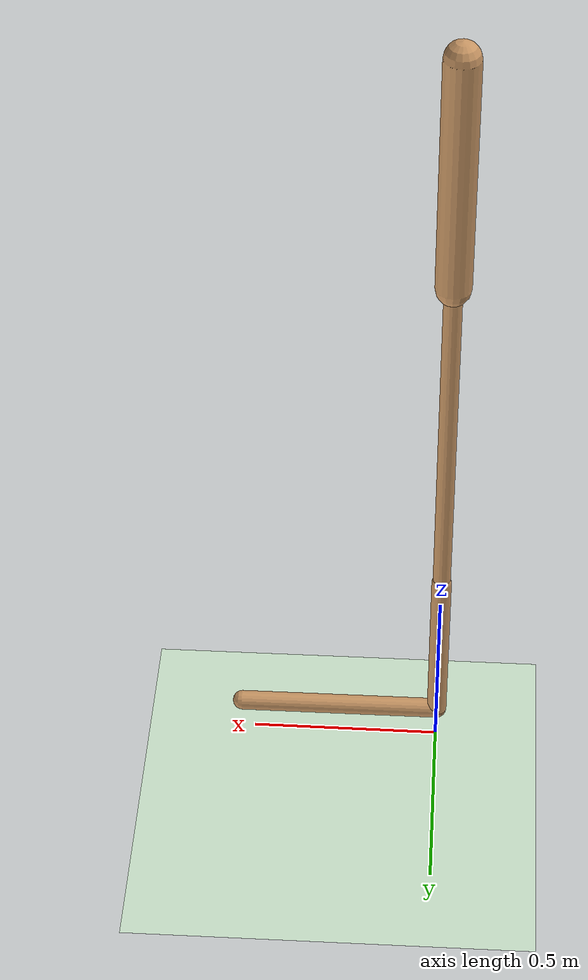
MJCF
<mujoco model="walker2d">
  <compiler angle="degree" inertiafromgeom="true" />
  <default>
    <joint armature="0.01" damping=".1" limited="true" />
    <geom conaffinity="0" condim="3" contype="1" density="1000" friction=".7 .1 .1" rgba="0.8 0.6 .4 1" />
  </default>
  <option integrator="RK4" timestep="0.002" />
  <worldbody>
    <light cutoff="100" diffuse="1 1 1" dir="-0 0 -1.3" directional="true" exponent="1" pos="0 0 1.3" specular=".1 .1 .1" />
    <geom conaffinity="1" condim="3" name="floor" pos="0 0 0" rgba="0.8 0.9 0.8 1" size="40 40 40" type="plane" material="MatPlane" />
    <body name="torso" pos="0 0 1.8701118588447572">
      <camera name="track" mode="trackcom" pos="0 -5 -1.25" xyaxes="1 0 0 0 0 1" />
      <joint armature="0" axis="1 0 0" damping="0" limited="false" name="rootx" pos="0 0 -1.25" stiffness="0" type="slide" />
      <joint armature="0" axis="0 0 1" damping="0" limited="false" name="rootz" pos="0 0 -1.25" ref="1.25" stiffness="0" type="slide" />
      <joint armature="0" axis="0 1 0" damping="0" limited="false" name="rooty" pos="0 0 0" stiffness="0" type="hinge" />
      <geom friction="0.9" name="torso_geom" size="0.044424355030059814 0.3151854872703552" type="capsule" />
      <body name="thigh" pos="0 0 -0.3151854872703552">
        <joint axis="0 -1 0" name="thigh_joint" pos="0 0 0" range="-150 0" type="hinge" />
        <site name="torso_thigh_site" pos="0 0 0" size="0.01" type="sphere" rgba="1 0 0 0.5" />
        <geom friction="0.9" pos="0 0 -0.4852128028869629" name="thigh_geom" size="0.023041408509016037 0.4852128028869629" type="capsule" />
        <body name="leg" pos="0 0 -1.2126759886741638">
          <joint axis="0 -1 0" name="leg_joint" pos="0 0 0.24225038290023804" range="-150 0" type="hinge" />
          <site name="thigh_leg_site" pos="0 0 0.25" size="0.01" type="sphere" rgba="1 0 0 0.5" />
          <geom friction="0.9" name="leg_geom" size="0.02602195553481579 0.24225038290023804" type="capsule" />
          <body name="foot" pos="0.5331371426582336 0 -0.342250382900238">
            <joint axis="0 -1 0" name="foot_joint" pos="-0.5331371426582336 0 0.1" range="-45 45" type="hinge" />
            <site name="leg_foot_site" pos="-0.2 0 0.1" size="0.01" type="sphere" rgba="1 0 0 0.5" />
            <geom friction="0.9" pos="-0.2665685713291168 0 0.1" quat="0.70710678118654757 0 -0.70710678118654746 0" name="foot_geom" size="0.026276875287294388 0.2665685713291168" type="capsule" />
          </body>
        </body>
      </body>

      <body name="thigh_left" pos="0 0 -0.3151854872703552">
        <joint axis="0 -1 0" name="thigh_left_joint" pos="0 0 0" range="-150 0" type="hinge" />
        <site name="torso_thigh_left_site" pos="0 0 0" size="0.01" type="sphere" rgba="1 0 0 0.5" />
        <geom friction="0.9" name="thigh_left_geom" rgba=".7 .3 .6 1" size="0.023041408509016037 0.4852128028869629" pos="0 0 -0.4852128028869629" type="capsule" />
        <body name="leg_left" pos="0 0 -1.2126759886741638">
          <joint axis="0 -1 0" name="leg_left_joint" pos="0 0 0.24225038290023804" range="-150 0" type="hinge" />
          <site name="thigh_leg_left_site" pos="0 0 0.25" size="0.01" type="sphere" rgba="1 0 0 0.5" />
          <geom friction="0.9" name="leg_left_geom" rgba=".7 .3 .6 1" size="0.02602195553481579 0.24225038290023804" type="capsule" />
          <body name="foot_left" pos="0.5331371426582336 0 -0.342250382900238">
            <joint axis="0 -1 0" name="foot_left_joint" pos="-0.5331371426582336 0 0.1" range="-45 45" type="hinge" />
            <site name="leg_foot_left_site" pos="-0.2 0 0.1" size="0.01" type="sphere" rgba="1 0 0 0.5" />
            <geom friction="1.9" name="foot_left_geom" rgba=".7 .3 .6 1" size="0.026276875287294388 0.2665685713291168" pos="-0.2665685713291168 0 0.1" type="capsule" quat="0.70710678118654757 0 -0.70710678118654746 0" />
          </body>
        </body>
      </body>
    </body>
  </worldbody>
  <actuator>

    <motor ctrllimited="true" ctrlrange="-1.0 1.0" gear="45.79602380190026" joint="thigh_joint" />
    <motor ctrllimited="true" ctrlrange="-1.0 1.0" gear="41.009487481374265" joint="leg_joint" />
    <motor ctrllimited="true" ctrlrange="-1.0 1.0" gear="51.12742064809813" joint="foot_joint" />
    <motor ctrllimited="true" ctrlrange="-1.0 1.0" gear="45.79602380190026" joint="thigh_left_joint" />
    <motor ctrllimited="true" ctrlrange="-1.0 1.0" gear="41.009487481374265" joint="leg_left_joint" />
    <motor ctrllimited="true" ctrlrange="-1.0 1.0" gear="51.12742064809813" joint="foot_left_joint" />

  </actuator>
    <asset>
        <texture type="skybox" builtin="gradient" rgb1=".4 .5 .6" rgb2="0 0 0" width="100" height="100" />
        <texture builtin="flat" height="1278" mark="cross" markrgb="1 1 1" name="texgeom" random="0.01" rgb1="0.8 0.6 0.4" rgb2="0.8 0.6 0.4" type="cube" width="127" />
        <texture builtin="checker" height="100" name="texplane" rgb1="0 0 0" rgb2="0.8 0.8 0.8" type="2d" width="100" />
        <material name="MatPlane" reflectance="0.5" shininess="1" specular="1" texrepeat="60 60" texture="texplane" />
        <material name="geom" texture="texgeom" texuniform="true" />
    </asset>

  <sensor>
    <force site="torso_thigh_site" name="torso_thigh_sensor" />
    <force site="thigh_leg_site" name="thigh_leg_sensor" />
    <force site="leg_foot_site" name="leg_foot_sensor" />
    <force site="torso_thigh_left_site" name="torso_thigh_left_sensor" />
    <force site="thigh_leg_left_site" name="thigh_leg_left_sensor" />
    <force site="leg_foot_left_site" name="leg_foot_left_sensor" />
  </sensor>
</mujoco>
